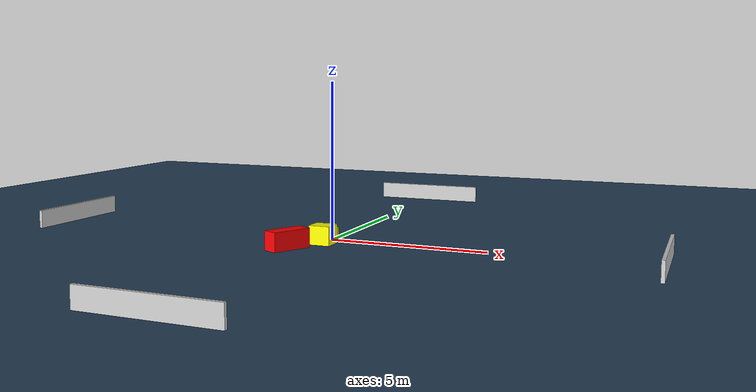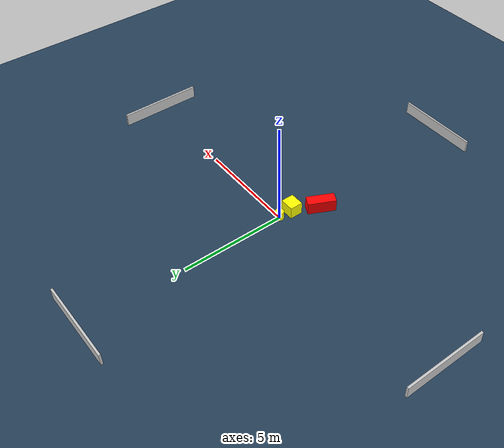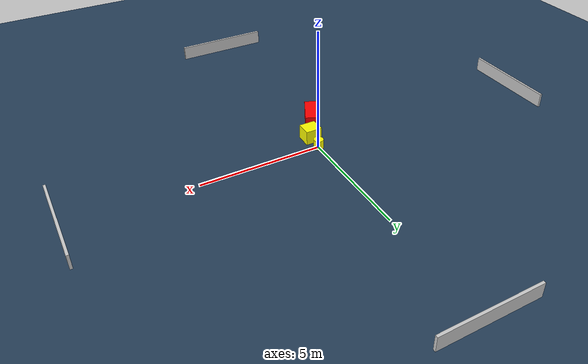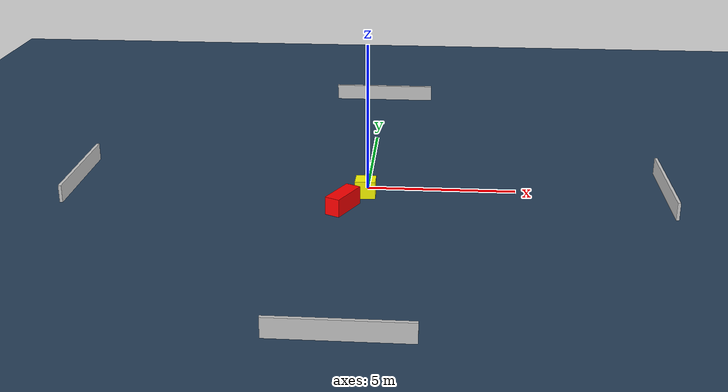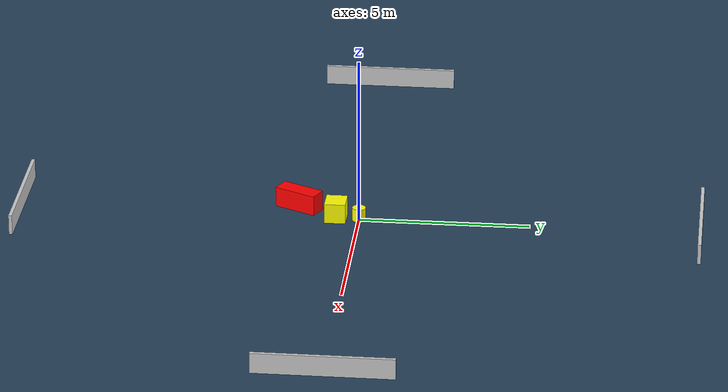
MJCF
<?xml version="1.0" ?>
<mujoco model="generated_environment">
  <option timestep="0.01" integrator="RK4" cone="elliptic"/>
  <default>
    <geom density="1"/>
  </default>
  <asset>
    <texture builtin="gradient" height="3072" name="skybox" rgb1="0.3 0.5 0.7" rgb2="0 0 0" type="skybox" width="512"/>
    <texture builtin="checker" height="300" name="groundplane" rgb1="0.2 0.3 0.4" rgb2="0.1 0.2 0.3" type="2d" width="300"/>
    <material name="groundplane" reflectance="0.2" texrepeat="5 5" texture="groundplane"/>
  </asset>
  <worldbody>
    <light dir="0 0 -1" directional="true" pos="0 0 1.5"/>
    <geom condim="3" friction="0.5 0.005 0.001" material="groundplane" name="floor" pos="0 0 0" size="0 0 0.05" type="plane"/>
    <body name="walls">
      <geom name="wall_1" condim="4" pos="-10.0 0.0 0.3" rgba="0.800000011920929 0.800000011920929 0.800000011920929 1.0" size="0.05 2.0 0.3" type="box"/>
      <geom name="wall_2" condim="4" pos="10.0 0.0 0.3" rgba="0.800000011920929 0.800000011920929 0.800000011920929 1.0" size="0.05 2.0 0.3" type="box"/>
      <geom name="wall_3" condim="4" pos="0.0 -10.0 0.3" rgba="0.800000011920929 0.800000011920929 0.800000011920929 1.0" size="2.0 0.05 0.3" type="box"/>
      <geom name="wall_4" condim="4" pos="0.0 10.0 0.3" rgba="0.800000011920929 0.800000011920929 0.800000011920929 1.0" size="2.0 0.05 0.3" type="box"/>
    </body>
    <body name="robot">
      <joint name="joint_x" type="slide" pos="0 0 0" axis="1 0 0"/>
      <joint name="joint_y" type="slide" pos="0 0 0" axis="0 1 0"/>
      <geom name="robot" type="cylinder" pos="0.0 0.0 0.2" size="0.2 0.2 0.0" mass="5.0" friction="1.0 0.005 0.0001" condim="4" rgba="1.0 1.0 0.0 1.0"/>
    </body>
    <body name="obstacle_1_movable">
      <geom name="obstacle_1_movable" condim="4" pos="-0.01886782647722468 -0.6844659399412781 0.3" euler="0 0 89.7390031764569" friction="0.0 0.005 0.001" rgba="1.0 1.0 0.0 1.0" size="0.3080429473748176 0.3385414114816456 0.3" type="box" mass="0.1"/>
      <joint type="free"/>
    </body>
    <body name="obstacle_2_static">
      <geom name="obstacle_2_static" condim="4" pos="-0.6741409058720371 -1.83780786798777 0.3" euler="0 0 243.63846686839491" friction="0.0 0.005 0.001" rgba="1.0 0.0 0.0 1.0" size="0.6577873065026332 0.25712299454153786 0.3" type="box"/>
    </body>
  </worldbody>
  <actuator>
    <motor name="actuator_x" joint="joint_x" gear="1" ctrlrange="-1 1"/>
    <motor name="actuator_y" joint="joint_y" gear="1" ctrlrange="-1 1"/>
  </actuator>
</mujoco>
